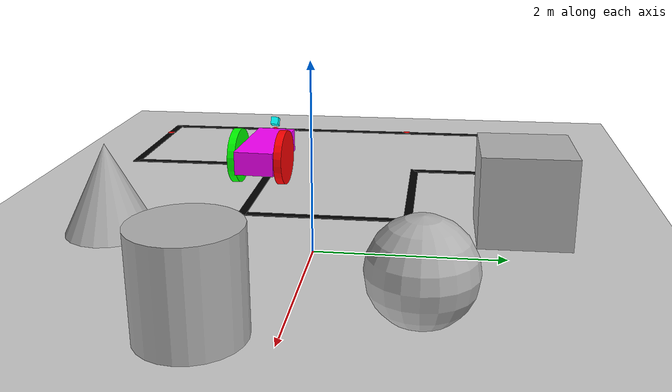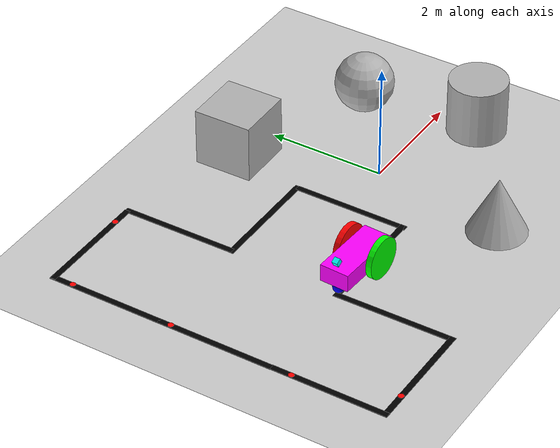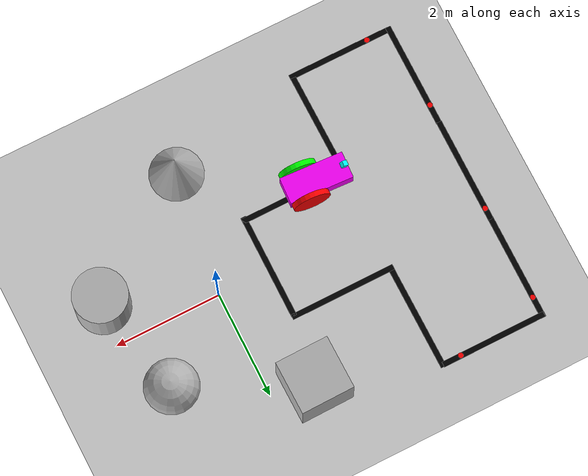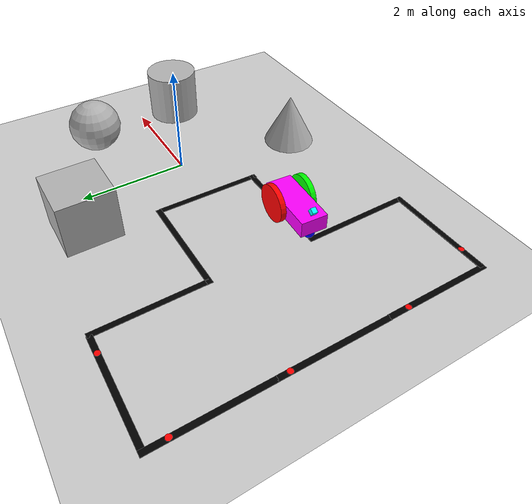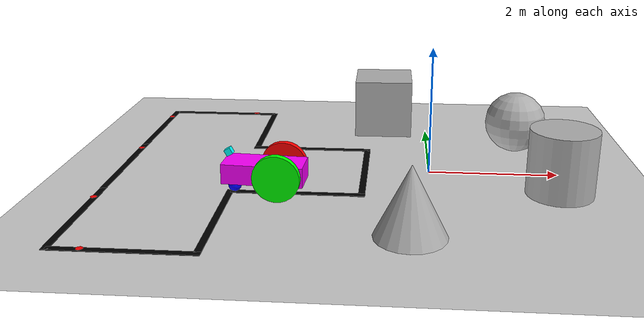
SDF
<sdf version='1.10'>
  <world name='empty'>
    <physics name='1ms' type='ignored'>
      <max_step_size>0.001</max_step_size>
      <real_time_factor>1</real_time_factor>
      <real_time_update_rate>1000</real_time_update_rate>
    </physics>
    <plugin name='gz::sim::systems::Physics' filename='gz-sim-physics-system'/>
    <plugin name='gz::sim::systems::UserCommands' filename='gz-sim-user-commands-system'/>
    <plugin name='gz::sim::systems::SceneBroadcaster' filename='gz-sim-scene-broadcaster-system'/>
    <plugin name='gz::sim::systems::Contact' filename='gz-sim-contact-system'/>
    <gravity>0 0 -9.8000000000000007</gravity>
    <magnetic_field>5.5644999999999998e-06 2.2875799999999999e-05 -4.2388400000000002e-05</magnetic_field>
    <atmosphere type='adiabatic'/>
    <scene>
      <ambient>0.400000006 0.400000006 0.400000006 1</ambient>
      <background>0.699999988 0.699999988 0.699999988 1</background>
      <shadows>true</shadows>
    </scene>
    <model name='ground_plane'>
      <static>true</static>
      <link name='link'>
        <collision name='collision'>
          <geometry>
            <plane>
              <normal>0 0 1</normal>
              <size>100 100</size>
            </plane>
          </geometry>
          <surface>
            <friction>
              <ode/>
            </friction>
            <bounce/>
            <contact/>
          </surface>
        </collision>
        <visual name='visual'>
          <geometry>
            <plane>
              <normal>0 0 1</normal>
              <size>100 100</size>
            </plane>
          </geometry>
          <material>
            <ambient>0.800000012 0.800000012 0.800000012 1</ambient>
            <diffuse>0.800000012 0.800000012 0.800000012 1</diffuse>
            <specular>0.800000012 0.800000012 0.800000012 1</specular>
          </material>
        </visual>
        <pose>0 0 0 0 0 0</pose>
        <inertial>
          <pose>0 0 0 0 0 0</pose>
          <mass>1</mass>
          <inertia>
            <ixx>1</ixx>
            <ixy>0</ixy>
            <ixz>0</ixz>
            <iyy>1</iyy>
            <iyz>0</iyz>
            <izz>1</izz>
          </inertia>
        </inertial>
        <enable_wind>false</enable_wind>
      </link>
      <pose>0 0 0 0 0 0</pose>
      <self_collide>false</self_collide>
    </model>
    <model name='cylinder'>
      <pose>1.8932199999999999 -0.73383500000000002 0.5 5.9815400000000006e-17 1.2404299999999998e-17 1.8414100000000004e-17</pose>
      <link name='cylinder_link'>
        <inertial>
          <inertia>
            <ixx>0.14580000000000001</ixx>
            <ixy>0</ixy>
            <ixz>0</ixz>
            <iyy>0.14580000000000001</iyy>
            <iyz>0</iyz>
            <izz>0.125</izz>
          </inertia>
          <mass>1</mass>
          <pose>0 0 0 0 0 0</pose>
        </inertial>
        <collision name='cylinder_collision'>
          <geometry>
            <cylinder>
              <radius>0.5</radius>
              <length>1</length>
            </cylinder>
          </geometry>
          <surface>
            <friction>
              <ode/>
            </friction>
            <bounce/>
            <contact/>
          </surface>
        </collision>
        <visual name='cylinder_visual'>
          <geometry>
            <cylinder>
              <radius>0.5</radius>
              <length>1</length>
            </cylinder>
          </geometry>
          <material>
            <ambient>0.300000012 0.300000012 0.300000012 1</ambient>
            <diffuse>0.699999988 0.699999988 0.699999988 1</diffuse>
            <specular>1 1 1 1</specular>
          </material>
        </visual>
        <pose>0 0 0 0 0 0</pose>
        <enable_wind>false</enable_wind>
      </link>
      <static>false</static>
      <self_collide>false</self_collide>
    </model>
    <model name='cone'>
      <pose>-0.31832730716427865 -2.3101152212019014 0.49999999602630429 2.1473304059484394e-09 -8.0151764825281829e-09 -0.0087846635229830595</pose>
      <link name='cone_link'>
        <inertial>
          <inertia>
            <ixx>0.074999999999999997</ixx>
            <ixy>0</ixy>
            <ixz>0</ixz>
            <iyy>0.074999999999999997</iyy>
            <iyz>0</iyz>
            <izz>0.074999999999999997</izz>
          </inertia>
          <mass>1</mass>
          <pose>0 0 0 0 0 0</pose>
        </inertial>
        <collision name='cone_collision'>
          <geometry>
            <cone>
              <radius>0.5</radius>
              <length>1</length>
            </cone>
          </geometry>
          <surface>
            <friction>
              <ode/>
            </friction>
            <bounce/>
            <contact/>
          </surface>
        </collision>
        <visual name='cone_visual'>
          <geometry>
            <cone>
              <radius>0.5</radius>
              <length>1</length>
            </cone>
          </geometry>
          <material>
            <ambient>0.300000012 0.300000012 0.300000012 1</ambient>
            <diffuse>0.699999988 0.699999988 0.699999988 1</diffuse>
            <specular>1 1 1 1</specular>
          </material>
        </visual>
        <pose>0 0 0 0 0 0</pose>
        <enable_wind>false</enable_wind>
      </link>
      <static>false</static>
      <self_collide>false</self_collide>
    </model>
    <model name='box'>
      <pose>-0.77461600303649902 2.1886999607086182 0.50000000000000011 -1.6215472313117064e-13 2.7146084108132366e-13 0.013985137011671072</pose>
      <link name='box_link'>
        <inertial>
          <inertia>
            <ixx>0.16666</ixx>
            <ixy>0</ixy>
            <ixz>0</ixz>
            <iyy>0.16666</iyy>
            <iyz>0</iyz>
            <izz>0.16666</izz>
          </inertia>
          <mass>1</mass>
          <pose>0 0 0 0 0 0</pose>
        </inertial>
        <collision name='box_collision'>
          <geometry>
            <box>
              <size>1 1 1</size>
            </box>
          </geometry>
          <surface>
            <friction>
              <ode/>
            </friction>
            <bounce/>
            <contact/>
          </surface>
        </collision>
        <visual name='box_visual'>
          <geometry>
            <box>
              <size>1 1 1</size>
            </box>
          </geometry>
          <material>
            <ambient>0.300000012 0.300000012 0.300000012 1</ambient>
            <diffuse>0.699999988 0.699999988 0.699999988 1</diffuse>
            <specular>1 1 1 1</specular>
          </material>
        </visual>
        <pose>0 0 0 0 0 0</pose>
        <enable_wind>false</enable_wind>
      </link>
      <static>false</static>
      <self_collide>false</self_collide>
    </model>
    <model name='sphere'>
      <pose>1.4796899557113647 1.1674797534942627 0.5 0 0 0</pose>
      <link name='sphere_link'>
        <inertial>
          <inertia>
            <ixx>0.10000000000000001</ixx>
            <ixy>0</ixy>
            <ixz>0</ixz>
            <iyy>0.10000000000000001</iyy>
            <iyz>0</iyz>
            <izz>0.10000000000000001</izz>
          </inertia>
          <mass>1</mass>
          <pose>0 0 0 0 0 0</pose>
        </inertial>
        <collision name='sphere_collision'>
          <geometry>
            <sphere>
              <radius>0.5</radius>
            </sphere>
          </geometry>
          <surface>
            <friction>
              <ode/>
            </friction>
            <bounce/>
            <contact/>
          </surface>
        </collision>
        <visual name='sphere_visual'>
          <geometry>
            <sphere>
              <radius>0.5</radius>
            </sphere>
          </geometry>
          <material>
            <ambient>0.300000012 0.300000012 0.300000012 1</ambient>
            <diffuse>0.699999988 0.699999988 0.699999988 1</diffuse>
            <specular>1 1 1 1</specular>
          </material>
        </visual>
        <pose>0 0 0 0 0 0</pose>
        <enable_wind>false</enable_wind>
      </link>
      <static>false</static>
      <self_collide>false</self_collide>
    </model>
    <model name='newthreewheelcar'>
      <link name='body'>
        <pose>0 0 0.34999999999999998 0 0 0</pose>
        <inertial auto='true'>
          <density>1000</density>
          <pose>0 0 0 0 0 0</pose>
          <mass>180</mass>
          <inertia>
            <ixx>5.0999999999999996</ixx>
            <ixy>0</ixy>
            <ixz>0</ixz>
            <iyy>22.949999999999999</iyy>
            <iyz>0</iyz>
            <izz>25.349999999999994</izz>
          </inertia>
        </inertial>
        <collision name='collision1'>
          <geometry>
            <box>
              <size>1.2 0.5 0.29999999999999999</size>
            </box>
          </geometry>
          <surface>
            <friction>
              <ode/>
            </friction>
            <bounce/>
            <contact/>
          </surface>
        </collision>
        <visual name='visual1'>
          <geometry>
            <box>
              <size>1.2 0.5 0.29999999999999999</size>
            </box>
          </geometry>
          <material>
            <ambient>1 0 1 1</ambient>
            <diffuse>1 0 1 1</diffuse>
            <specular>1 0 1 1</specular>
          </material>
        </visual>
        <enable_wind>false</enable_wind>
      </link>
      <link name='rightwheel'>
        <pose>-0.23000000000000442 -0.30000000000000226 0.34999999999999992 -1.5707963267948966 -0.72183593820311143 -3.1415926535897927</pose>
        <inertial auto='true'>
          <density>400</density>
          <pose>0 0 0 0 0 0</pose>
          <mass>15.393804002589986</mass>
          <inertia>
            <ixx>0.48426341758147651</ixx>
            <ixy>0</ixy>
            <ixz>0</ixz>
            <iyy>0.48426341758147651</iyy>
            <iyz>0</iyz>
            <izz>0.94287049515863652</izz>
          </inertia>
        </inertial>
        <collision name='collision1'>
          <geometry>
            <cylinder>
              <length>0.10000000000000001</length>
              <radius>0.34999999999999998</radius>
            </cylinder>
          </geometry>
          <surface>
            <friction>
              <ode/>
            </friction>
            <bounce/>
            <contact/>
          </surface>
        </collision>
        <visual name='visual1'>
          <geometry>
            <cylinder>
              <length>0.10000000000000001</length>
              <radius>0.34999999999999998</radius>
            </cylinder>
          </geometry>
          <material>
            <ambient>1 0 0 1</ambient>
            <diffuse>1 0 0 1</diffuse>
            <specular>1 0 0 1</specular>
          </material>
        </visual>
        <enable_wind>false</enable_wind>
      </link>
      <link name='leftwheel'>
        <pose>-0.23000000000000353 0.2999999999999976 0.35000000000000003 1.5707963267948966 -0.35232814316380617 -2.9572137220775727e-17</pose>
        <inertial auto='true'>
          <density>400</density>
          <pose>0 0 0 0 0 0</pose>
          <mass>15.393804002589986</mass>
          <inertia>
            <ixx>0.48426341758147651</ixx>
            <ixy>0</ixy>
            <ixz>0</ixz>
            <iyy>0.48426341758147651</iyy>
            <iyz>0</iyz>
            <izz>0.94287049515863652</izz>
          </inertia>
        </inertial>
        <collision name='collision1'>
          <geometry>
            <cylinder>
              <length>0.10000000000000001</length>
              <radius>0.34999999999999998</radius>
            </cylinder>
          </geometry>
          <surface>
            <friction>
              <ode/>
            </friction>
            <bounce/>
            <contact/>
          </surface>
        </collision>
        <visual name='visual1'>
          <geometry>
            <cylinder>
              <length>0.10000000000000001</length>
              <radius>0.34999999999999998</radius>
            </cylinder>
          </geometry>
          <material>
            <ambient>0 1 0 1</ambient>
            <diffuse>0 1 0 1</diffuse>
            <specular>0 1 0 1</specular>
          </material>
        </visual>
        <enable_wind>false</enable_wind>
      </link>
      <link name='ballwheel'>
        <pose>0.45999999999999464 -2.4424906541753444e-15 0.099999999999999867 0.033526185297885876 0.12752410755114504 0.34888461687009326</pose>
        <inertial auto='true'>
          <density>1500</density>
          <pose>0 0 0 0 0 0</pose>
          <mass>6.2831853071795871</mass>
          <inertia>
            <ixx>0.025132741228718353</ixx>
            <ixy>0</ixy>
            <ixz>0</ixz>
            <iyy>0.025132741228718353</iyy>
            <iyz>0</iyz>
            <izz>0.025132741228718353</izz>
          </inertia>
        </inertial>
        <collision name='collision1'>
          <geometry>
            <sphere>
              <radius>0.10000000000000001</radius>
            </sphere>
          </geometry>
          <surface>
            <friction>
              <ode/>
            </friction>
            <bounce/>
            <contact/>
          </surface>
        </collision>
        <visual name='visual1'>
          <geometry>
            <sphere>
              <radius>0.10000000000000001</radius>
            </sphere>
          </geometry>
          <material>
            <ambient>0 0 1 1</ambient>
            <diffuse>0 0 1 1</diffuse>
            <specular>0 0 1 1</specular>
          </material>
        </visual>
        <enable_wind>false</enable_wind>
      </link>
      <link name='camera'>
        <pose>0.52999999999999492 -2.2204460492503131e-15 0.62 1.4667042995854047e-16 0.52359877559829859 4.2003481684763413e-16</pose>
        <inertial auto='true'>
          <density>1000</density>
          <pose>0 0 0 0 0 0</pose>
          <mass>1.0000000000000002</mass>
          <inertia>
            <ixx>0.0016666666666666674</ixx>
            <ixy>0</ixy>
            <ixz>0</ixz>
            <iyy>0.0016666666666666674</iyy>
            <iyz>0</iyz>
            <izz>0.0016666666666666674</izz>
          </inertia>
        </inertial>
        <collision name='collision1'>
          <geometry>
            <box>
              <size>0.10000000000000001 0.10000000000000001 0.10000000000000001</size>
            </box>
          </geometry>
          <surface>
            <friction>
              <ode/>
            </friction>
            <bounce/>
            <contact/>
          </surface>
        </collision>
        <visual name='visual1'>
          <geometry>
            <box>
              <size>0.10000000000000001 0.10000000000000001 0.10000000000000001</size>
            </box>
          </geometry>
          <material>
            <ambient>0 1 1 1</ambient>
            <diffuse>0 1 1 1</diffuse>
            <specular>0 1 1 1</specular>
          </material>
        </visual>
        <sensor name='camera' type='camera'>
          <pose>1.3877792684688674e-16 1.9721522630525295e-31 -2.2204430246251567e-16 0 8.8833518684861254e-33 0</pose>
          <topic>camera</topic>
          <update_rate>30</update_rate>
          <enable_metrics>false</enable_metrics>
          <camera name='__default__'>
            <pose>0 0 0 0 0 0</pose>
            <horizontal_fov>1.0469999999999999</horizontal_fov>
            <image>
              <width>320</width>
              <height>240</height>
              <format>RGB_INT8</format>
              <anti_aliasing>4</anti_aliasing>
            </image>
            <camera_info_topic>__default__</camera_info_topic>
            <trigger_topic></trigger_topic>
            <triggered>false</triggered>
            <clip>
              <near>0.10000000000000001</near>
              <far>100</far>
            </clip>
            <save enabled='false'>
              <path>__default__</path>
            </save>
            <visibility_mask>4294967295</visibility_mask>
            <noise>
              <type>none</type>
              <mean>0</mean>
              <stddev>0</stddev>
            </noise>
            <distortion>
              <k1>0</k1>
              <k2>0</k2>
              <k3>0</k3>
              <p1>0</p1>
              <p2>0</p2>
              <center>0.5 0.5</center>
            </distortion>
            <lens>
              <type>stereographic</type>
              <scale_to_hfov>true</scale_to_hfov>
              <cutoff_angle>1.5707963267948966</cutoff_angle>
              <env_texture_size>256</env_texture_size>
            </lens>
            <optical_frame_id></optical_frame_id>
          </camera>
        </sensor>
        <enable_wind>false</enable_wind>
      </link>
      <joint name='leftjoint' type='revolute'>
        <pose>-1.3877787807814457e-17 0 1.1102230246251565e-16 0 0 0</pose>
        <parent>body</parent>
        <child>leftwheel</child>
        <axis>
          <xyz>0 2.2204460492503131e-16 -1</xyz>
          <limit>
            <lower>-1.7976900000000001e+308</lower>
            <upper>1.7976900000000001e+308</upper>
            <effort>inf</effort>
            <velocity>inf</velocity>
            <stiffness>100000000</stiffness>
            <dissipation>1</dissipation>
          </limit>
          <dynamics>
            <spring_reference>0</spring_reference>
            <spring_stiffness>0</spring_stiffness>
            <damping>0</damping>
            <friction>0</friction>
          </dynamics>
        </axis>
      </joint>
      <joint name='rightjoint' type='revolute'>
        <pose>0 8.3266726846886741e-17 0 0 0 0</pose>
        <parent>body</parent>
        <child>rightwheel</child>
        <axis>
          <xyz>0 2.2204460492503131e-16 -1</xyz>
          <limit>
            <lower>-1.7976900000000001e+308</lower>
            <upper>1.7976900000000001e+308</upper>
            <effort>inf</effort>
            <velocity>inf</velocity>
            <stiffness>100000000</stiffness>
            <dissipation>1</dissipation>
          </limit>
          <dynamics>
            <spring_reference>0</spring_reference>
            <spring_stiffness>0</spring_stiffness>
            <damping>0</damping>
            <friction>0</friction>
          </dynamics>
        </axis>
      </joint>
      <joint name='balljoint' type='ball'>
        <pose>5.5511151231257827e-17 0 0 0 3.6862873864507151e-18 0</pose>
        <parent>body</parent>
        <child>ballwheel</child>
      </joint>
      <joint name='camerajoint' type='fixed'>
        <parent>body</parent>
        <child>camera</child>
        <pose>1.1102230246251565e-16 1.9721522630525295e-31 -1.1102230246251565e-16 0 8.8833518684861254e-33 0</pose>
      </joint>
      <plugin name='gz::sim::systems::DiffDrive' filename='gz-sim-diff-drive-system'>
        <left_joint>leftjoint</left_joint>
        <right_joint>rightjoint</right_joint>
        <wheel_separation>0.6</wheel_separation>
        <wheel_radius>0.35</wheel_radius>
        <odom_publish_frequency>1</odom_publish_frequency>
        <topic>cmd_vel</topic>
      </plugin>
      <plugin name='gz::sim::systems::Sensors' filename='gz-sim-sensors-system'>
        <render_engine>ogre2</render_engine>
      </plugin>
      <pose>-2.4448542635035824 -1.0128777498701593 0.0016736430121606083 6.1291553827567226e-16 -0.0072369478486874255 3.0866060538970608</pose>
      <static>false</static>
      <self_collide>false</self_collide>
    </model>
    <model name='BlackLine'>
      <static>true</static>
      <link name='body'>
        <collision name='surface'>
          <geometry>
            <box>
              <size>2 0.10000000000000001 0.01</size>
            </box>
          </geometry>
          <surface>
            <friction>
              <ode/>
            </friction>
            <bounce/>
            <contact/>
          </surface>
        </collision>
        <visual name='visual'>
          <geometry>
            <box>
              <size>2 0.10000000000000001 0.01</size>
            </box>
          </geometry>
          <material>
            <ambient>0 0 0 1</ambient>
            <diffuse>0 0 0 1</diffuse>
            <specular>0.100000001 0.100000001 0.100000001 1</specular>
          </material>
        </visual>
        <pose>0 0 0 0 0 0</pose>
        <inertial>
          <pose>0 0 0 0 0 0</pose>
          <mass>1</mass>
          <inertia>
            <ixx>1</ixx>
            <ixy>0</ixy>
            <ixz>0</ixz>
            <iyy>1</iyy>
            <iyz>0</iyz>
            <izz>1</izz>
          </inertia>
        </inertial>
        <enable_wind>false</enable_wind>
      </link>
      <pose>-1.9671000000000001 -1.00448 0 0 0 0</pose>
      <self_collide>false</self_collide>
    </model>
    <model name='BlackLine_0'>
      <static>true</static>
      <link name='body'>
        <collision name='surface'>
          <geometry>
            <box>
              <size>2 0.10000000000000001 0.01</size>
            </box>
          </geometry>
          <surface>
            <friction>
              <ode/>
            </friction>
            <bounce/>
            <contact/>
          </surface>
        </collision>
        <visual name='visual'>
          <geometry>
            <box>
              <size>2 0.10000000000000001 0.01</size>
            </box>
          </geometry>
          <material>
            <ambient>0 0 0 1</ambient>
            <diffuse>0 0 0 1</diffuse>
            <specular>0.100000001 0.100000001 0.100000001 1</specular>
          </material>
        </visual>
        <pose>0 0 0 0 0 0</pose>
        <inertial>
          <pose>0 0 0 0 0 0</pose>
          <mass>1</mass>
          <inertia>
            <ixx>1</ixx>
            <ixy>0</ixy>
            <ixz>0</ixz>
            <iyy>1</iyy>
            <iyz>0</iyz>
            <izz>1</izz>
          </inertia>
        </inertial>
        <enable_wind>false</enable_wind>
      </link>
      <pose>-2.97288 -1.9547300000000001 0 0 0 1.5778300000000003</pose>
      <self_collide>false</self_collide>
    </model>
    <model name='BlackLine_1'>
      <static>true</static>
      <link name='body'>
        <collision name='surface'>
          <geometry>
            <box>
              <size>2 0.10000000000000001 0.01</size>
            </box>
          </geometry>
          <surface>
            <friction>
              <ode/>
            </friction>
            <bounce/>
            <contact/>
          </surface>
        </collision>
        <visual name='visual'>
          <geometry>
            <box>
              <size>2 0.10000000000000001 0.01</size>
            </box>
          </geometry>
          <material>
            <ambient>0 0 0 1</ambient>
            <diffuse>0 0 0 1</diffuse>
            <specular>0.100000001 0.100000001 0.100000001 1</specular>
          </material>
        </visual>
        <pose>0 0 0 0 0 0</pose>
        <inertial>
          <pose>0 0 0 0 0 0</pose>
          <mass>1</mass>
          <inertia>
            <ixx>1</ixx>
            <ixy>0</ixy>
            <ixz>0</ixz>
            <iyy>1</iyy>
            <iyz>0</iyz>
            <izz>1</izz>
          </inertia>
        </inertial>
        <enable_wind>false</enable_wind>
      </link>
      <pose>-3.9152999999999998 -2.9832399999999999 0 0 0 0</pose>
      <self_collide>false</self_collide>
    </model>
    <model name='BlackLine_2'>
      <static>true</static>
      <link name='body'>
        <collision name='surface'>
          <geometry>
            <box>
              <size>2 0.10000000000000001 0.01</size>
            </box>
          </geometry>
          <surface>
            <friction>
              <ode/>
            </friction>
            <bounce/>
            <contact/>
          </surface>
        </collision>
        <visual name='visual'>
          <geometry>
            <box>
              <size>2 0.10000000000000001 0.01</size>
            </box>
          </geometry>
          <material>
            <ambient>0 0 0 1</ambient>
            <diffuse>0 0 0 1</diffuse>
            <specular>0.100000001 0.100000001 0.100000001 1</specular>
          </material>
        </visual>
        <pose>0 0 0 0 0 0</pose>
        <inertial>
          <pose>0 0 0 0 0 0</pose>
          <mass>1</mass>
          <inertia>
            <ixx>1</ixx>
            <ixy>0</ixy>
            <ixz>0</ixz>
            <iyy>1</iyy>
            <iyz>0</iyz>
            <izz>1</izz>
          </inertia>
        </inertial>
        <enable_wind>false</enable_wind>
      </link>
      <pose>-4.9088700000000003 -2.0297700000000001 0 0 0 -1.57287</pose>
      <self_collide>false</self_collide>
    </model>
    <model name='BlackLine_2_1'>
      <static>true</static>
      <link name='body'>
        <collision name='surface'>
          <geometry>
            <box>
              <size>2 0.10000000000000001 0.01</size>
            </box>
          </geometry>
          <surface>
            <friction>
              <ode/>
            </friction>
            <bounce/>
            <contact/>
          </surface>
        </collision>
        <visual name='visual'>
          <geometry>
            <box>
              <size>2 0.10000000000000001 0.01</size>
            </box>
          </geometry>
          <material>
            <ambient>0 0 0 1</ambient>
            <diffuse>0 0 0 1</diffuse>
            <specular>0.100000001 0.100000001 0.100000001 1</specular>
          </material>
        </visual>
        <pose>0 0 0 0 0 0</pose>
        <inertial>
          <pose>0 0 0 0 0 0</pose>
          <mass>1</mass>
          <inertia>
            <ixx>1</ixx>
            <ixy>0</ixy>
            <ixz>0</ixz>
            <iyy>1</iyy>
            <iyz>0</iyz>
            <izz>1</izz>
          </inertia>
        </inertial>
        <enable_wind>false</enable_wind>
      </link>
      <pose>-4.9096099999999998 -0.0471771 0 0 0 -1.57287</pose>
      <self_collide>false</self_collide>
    </model>
    <model name='BlackLine_2_1_1'>
      <static>true</static>
      <link name='body'>
        <collision name='surface'>
          <geometry>
            <box>
              <size>2 0.10000000000000001 0.01</size>
            </box>
          </geometry>
          <surface>
            <friction>
              <ode/>
            </friction>
            <bounce/>
            <contact/>
          </surface>
        </collision>
        <visual name='visual'>
          <geometry>
            <box>
              <size>2 0.10000000000000001 0.01</size>
            </box>
          </geometry>
          <material>
            <ambient>0 0 0 1</ambient>
            <diffuse>0 0 0 1</diffuse>
            <specular>0.100000001 0.100000001 0.100000001 1</specular>
          </material>
        </visual>
        <pose>0 0 0 0 0 0</pose>
        <inertial>
          <pose>0 0 0 0 0 0</pose>
          <mass>1</mass>
          <inertia>
            <ixx>1</ixx>
            <ixy>0</ixy>
            <ixz>0</ixz>
            <iyy>1</iyy>
            <iyz>0</iyz>
            <izz>1</izz>
          </inertia>
        </inertial>
        <enable_wind>false</enable_wind>
      </link>
      <pose>-4.90665 1.9352100000000001 0 0 0 -1.57287</pose>
      <self_collide>false</self_collide>
    </model>
    <model name='BlackLine_1_1'>
      <static>true</static>
      <link name='body'>
        <collision name='surface'>
          <geometry>
            <box>
              <size>2 0.10000000000000001 0.01</size>
            </box>
          </geometry>
          <surface>
            <friction>
              <ode/>
            </friction>
            <bounce/>
            <contact/>
          </surface>
        </collision>
        <visual name='visual'>
          <geometry>
            <box>
              <size>2 0.10000000000000001 0.01</size>
            </box>
          </geometry>
          <material>
            <ambient>0 0 0 1</ambient>
            <diffuse>0 0 0 1</diffuse>
            <specular>0.100000001 0.100000001 0.100000001 1</specular>
          </material>
        </visual>
        <pose>0 0 0 0 0 0</pose>
        <inertial>
          <pose>0 0 0 0 0 0</pose>
          <mass>1</mass>
          <inertia>
            <ixx>1</ixx>
            <ixy>0</ixy>
            <ixz>0</ixz>
            <iyy>1</iyy>
            <iyz>0</iyz>
            <izz>1</izz>
          </inertia>
        </inertial>
        <enable_wind>false</enable_wind>
      </link>
      <pose>-3.941270112991333 2.884160041809082 0 0 0 0</pose>
      <self_collide>false</self_collide>
    </model>
    <model name='BlackLine_0_1'>
      <static>true</static>
      <link name='body'>
        <collision name='surface'>
          <geometry>
            <box>
              <size>2 0.10000000000000001 0.01</size>
            </box>
          </geometry>
          <surface>
            <friction>
              <ode/>
            </friction>
            <bounce/>
            <contact/>
          </surface>
        </collision>
        <visual name='visual'>
          <geometry>
            <box>
              <size>2 0.10000000000000001 0.01</size>
            </box>
          </geometry>
          <material>
            <ambient>0 0 0 1</ambient>
            <diffuse>0 0 0 1</diffuse>
            <specular>0.100000001 0.100000001 0.100000001 1</specular>
          </material>
        </visual>
        <pose>0 0 0 0 0 0</pose>
        <inertial>
          <pose>0 0 0 0 0 0</pose>
          <mass>1</mass>
          <inertia>
            <ixx>1</ixx>
            <ixy>0</ixy>
            <ixz>0</ixz>
            <iyy>1</iyy>
            <iyz>0</iyz>
            <izz>1</izz>
          </inertia>
        </inertial>
        <enable_wind>false</enable_wind>
      </link>
      <pose>-2.92754 1.92313 0 0 0 1.5778300000000003</pose>
      <self_collide>false</self_collide>
    </model>
    <model name='BlackLine_3'>
      <static>true</static>
      <link name='body'>
        <collision name='surface'>
          <geometry>
            <box>
              <size>2 0.10000000000000001 0.01</size>
            </box>
          </geometry>
          <surface>
            <friction>
              <ode/>
            </friction>
            <bounce/>
            <contact/>
          </surface>
        </collision>
        <visual name='visual'>
          <geometry>
            <box>
              <size>2 0.10000000000000001 0.01</size>
            </box>
          </geometry>
          <material>
            <ambient>0 0 0 1</ambient>
            <diffuse>0 0 0 1</diffuse>
            <specular>0.100000001 0.100000001 0.100000001 1</specular>
          </material>
        </visual>
        <pose>0 0 0 0 0 0</pose>
        <inertial>
          <pose>0 0 0 0 0 0</pose>
          <mass>1</mass>
          <inertia>
            <ixx>1</ixx>
            <ixy>0</ixy>
            <ixz>0</ixz>
            <iyy>1</iyy>
            <iyz>0</iyz>
            <izz>1</izz>
          </inertia>
        </inertial>
        <enable_wind>false</enable_wind>
      </link>
      <pose>-1.9731799999999999 0.93290600000000001 0 0 0 0</pose>
      <self_collide>false</self_collide>
    </model>
    <model name='BlackLine_2_1_2'>
      <static>true</static>
      <link name='body'>
        <collision name='surface'>
          <geometry>
            <box>
              <size>2 0.10000000000000001 0.01</size>
            </box>
          </geometry>
          <surface>
            <friction>
              <ode/>
            </friction>
            <bounce/>
            <contact/>
          </surface>
        </collision>
        <visual name='visual'>
          <geometry>
            <box>
              <size>2 0.10000000000000001 0.01</size>
            </box>
          </geometry>
          <material>
            <ambient>0 0 0 1</ambient>
            <diffuse>0 0 0 1</diffuse>
            <specular>0.100000001 0.100000001 0.100000001 1</specular>
          </material>
        </visual>
        <pose>0 0 0 0 0 0</pose>
        <inertial>
          <pose>0 0 0 0 0 0</pose>
          <mass>1</mass>
          <inertia>
            <ixx>1</ixx>
            <ixy>0</ixy>
            <ixz>0</ixz>
            <iyy>1</iyy>
            <iyz>0</iyz>
            <izz>1</izz>
          </inertia>
        </inertial>
        <enable_wind>false</enable_wind>
      </link>
      <pose>-1.0177306665216941 -0.071482305009241132 0 0 0 -1.5728700106591309</pose>
      <self_collide>false</self_collide>
    </model>
    <model name='RedFlatDot'>
      <static>true</static>
      <link name='body'>
        <collision name='disk_collision'>
          <geometry>
            <cylinder>
              <radius>0.050000000000000003</radius>
              <length>0.001</length>
            </cylinder>
          </geometry>
          <surface>
            <friction>
              <ode/>
            </friction>
            <bounce/>
            <contact/>
          </surface>
        </collision>
        <visual name='disk_visual'>
          <geometry>
            <cylinder>
              <radius>0.050000000000000003</radius>
              <length>0.001</length>
            </cylinder>
          </geometry>
          <material>
            <ambient>1 0 0 1</ambient>
            <diffuse>1 0 0 1</diffuse>
            <specular>0.200000003 0.200000003 0.200000003 1</specular>
          </material>
        </visual>
        <pose>0 0 0 0 0 0</pose>
        <inertial>
          <pose>0 0 0 0 0 0</pose>
          <mass>1</mass>
          <inertia>
            <ixx>1</ixx>
            <ixy>0</ixy>
            <ixz>0</ixz>
            <iyy>1</iyy>
            <iyz>0</iyz>
            <izz>1</izz>
          </inertia>
        </inertial>
        <enable_wind>false</enable_wind>
      </link>
      <pose>-4.4625353813171387 -2.9817099571228027 0.014999999664723873 0 0 0</pose>
      <self_collide>false</self_collide>
    </model>
    <model name='RedFlatDot_1'>
      <static>true</static>
      <link name='body'>
        <collision name='disk_collision'>
          <geometry>
            <cylinder>
              <radius>0.050000000000000003</radius>
              <length>0.001</length>
            </cylinder>
          </geometry>
          <surface>
            <friction>
              <ode/>
            </friction>
            <bounce/>
            <contact/>
          </surface>
        </collision>
        <visual name='disk_visual'>
          <geometry>
            <cylinder>
              <radius>0.050000000000000003</radius>
              <length>0.001</length>
            </cylinder>
          </geometry>
          <material>
            <ambient>1 0 0 1</ambient>
            <diffuse>1 0 0 1</diffuse>
            <specular>0.200000003 0.200000003 0.200000003 1</specular>
          </material>
        </visual>
        <pose>0 0 0 0 0 0</pose>
        <inertial>
          <pose>0 0 0 0 0 0</pose>
          <mass>1</mass>
          <inertia>
            <ixx>1</ixx>
            <ixy>0</ixy>
            <ixz>0</ixz>
            <iyy>1</iyy>
            <iyz>0</iyz>
            <izz>1</izz>
          </inertia>
        </inertial>
        <enable_wind>false</enable_wind>
      </link>
      <pose>-4.9146154971924521 -1.3945061358273554 0.014999999664723873 0 0 0</pose>
      <self_collide>false</self_collide>
    </model>
    <model name='RedFlatDot_1_1'>
      <static>true</static>
      <link name='body'>
        <collision name='disk_collision'>
          <geometry>
            <cylinder>
              <radius>0.050000000000000003</radius>
              <length>0.001</length>
            </cylinder>
          </geometry>
          <surface>
            <friction>
              <ode/>
            </friction>
            <bounce/>
            <contact/>
          </surface>
        </collision>
        <visual name='disk_visual'>
          <geometry>
            <cylinder>
              <radius>0.050000000000000003</radius>
              <length>0.001</length>
            </cylinder>
          </geometry>
          <material>
            <ambient>1 0 0 1</ambient>
            <diffuse>1 0 0 1</diffuse>
            <specular>0.200000003 0.200000003 0.200000003 1</specular>
          </material>
        </visual>
        <pose>0 0 0 0 0 0</pose>
        <inertial>
          <pose>0 0 0 0 0 0</pose>
          <mass>1</mass>
          <inertia>
            <ixx>1</ixx>
            <ixy>0</ixy>
            <ixz>0</ixz>
            <iyy>1</iyy>
            <iyz>0</iyz>
            <izz>1</izz>
          </inertia>
        </inertial>
        <enable_wind>false</enable_wind>
      </link>
      <pose>-4.9067190326422345 0.73214649934882603 0.014999999664723873 0 0 0</pose>
      <self_collide>false</self_collide>
    </model>
    <model name='RedFlatDot_1_1_1'>
      <static>true</static>
      <link name='body'>
        <collision name='disk_collision'>
          <geometry>
            <cylinder>
              <radius>0.050000000000000003</radius>
              <length>0.001</length>
            </cylinder>
          </geometry>
          <surface>
            <friction>
              <ode/>
            </friction>
            <bounce/>
            <contact/>
          </surface>
        </collision>
        <visual name='disk_visual'>
          <geometry>
            <cylinder>
              <radius>0.050000000000000003</radius>
              <length>0.001</length>
            </cylinder>
          </geometry>
          <material>
            <ambient>1 0 0 1</ambient>
            <diffuse>1 0 0 1</diffuse>
            <specular>0.200000003 0.200000003 0.200000003 1</specular>
          </material>
        </visual>
        <pose>0 0 0 0 0 0</pose>
        <inertial>
          <pose>0 0 0 0 0 0</pose>
          <mass>1</mass>
          <inertia>
            <ixx>1</ixx>
            <ixy>0</ixy>
            <ixz>0</ixz>
            <iyy>1</iyy>
            <iyz>0</iyz>
            <izz>1</izz>
          </inertia>
        </inertial>
        <enable_wind>false</enable_wind>
      </link>
      <pose>-4.9025280990912847 2.5341311470378862 0.014999999664723873 0 0 0</pose>
      <self_collide>false</self_collide>
    </model>
    <model name='RedFlatDot_1_1_1_1'>
      <static>true</static>
      <link name='body'>
        <collision name='disk_collision'>
          <geometry>
            <cylinder>
              <radius>0.050000000000000003</radius>
              <length>0.001</length>
            </cylinder>
          </geometry>
          <surface>
            <friction>
              <ode/>
            </friction>
            <bounce/>
            <contact/>
          </surface>
        </collision>
        <visual name='disk_visual'>
          <geometry>
            <cylinder>
              <radius>0.050000000000000003</radius>
              <length>0.001</length>
            </cylinder>
          </geometry>
          <material>
            <ambient>1 0 0 1</ambient>
            <diffuse>1 0 0 1</diffuse>
            <specular>0.200000003 0.200000003 0.200000003 1</specular>
          </material>
        </visual>
        <pose>0 0 0 0 0 0</pose>
        <inertial>
          <pose>0 0 0 0 0 0</pose>
          <mass>1</mass>
          <inertia>
            <ixx>1</ixx>
            <ixy>0</ixy>
            <ixz>0</ixz>
            <iyy>1</iyy>
            <iyz>0</iyz>
            <izz>1</izz>
          </inertia>
        </inertial>
        <enable_wind>false</enable_wind>
      </link>
      <pose>-3.2931941457744669 2.8798370304946483 0.014999999664723873 0 0 0</pose>
      <self_collide>false</self_collide>
    </model>
    <light name='sun' type='directional'>
      <pose>0 0 10 0 0 0</pose>
      <cast_shadows>true</cast_shadows>
      <intensity>1</intensity>
      <direction>-0.5 0.10000000000000001 -0.90000000000000002</direction>
      <diffuse>0.800000012 0.800000012 0.800000012 1</diffuse>
      <specular>0.200000003 0.200000003 0.200000003 1</specular>
      <attenuation>
        <range>1000</range>
        <linear>0.0099999997764825821</linear>
        <constant>0.89999997615814209</constant>
        <quadratic>0.0010000000474974513</quadratic>
      </attenuation>
      <spot>
        <inner_angle>0</inner_angle>
        <outer_angle>0</outer_angle>
        <falloff>0</falloff>
      </spot>
    </light>
    <light name='directionallight' type='directional'>
      <pose>3.3370799999999998 -4.1240899999999998 2 0 0 0</pose>
      <cast_shadows>true</cast_shadows>
      <intensity>1</intensity>
      <direction>0 0 -1</direction>
      <diffuse>0.800000012 0.800000012 0.800000012 1</diffuse>
      <specular>0.200000003 0.200000003 0.200000003 1</specular>
      <attenuation>
        <range>1000</range>
        <linear>0.0099999997764825821</linear>
        <constant>0.89999997615814209</constant>
        <quadratic>0.0010000000474974513</quadratic>
      </attenuation>
      <spot>
        <inner_angle>0</inner_angle>
        <outer_angle>0</outer_angle>
        <falloff>0</falloff>
      </spot>
    </light>
  </world>
</sdf>
